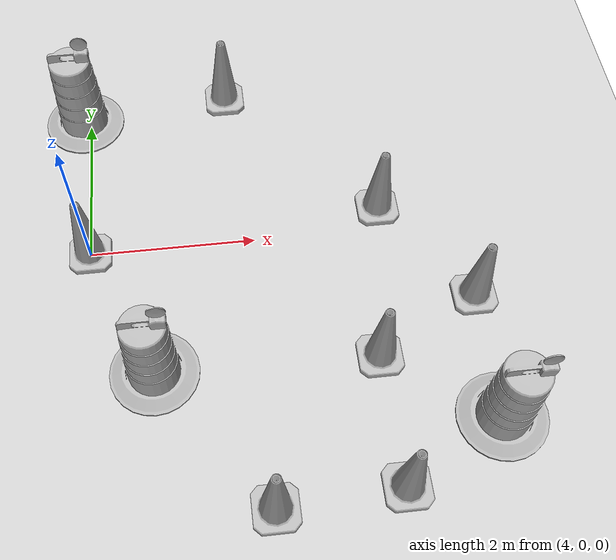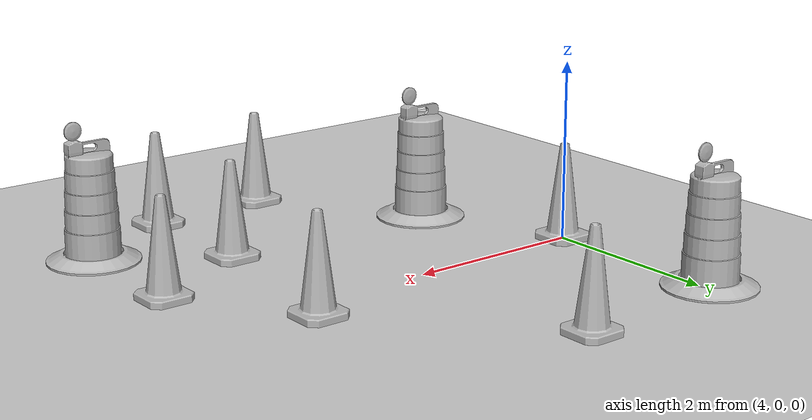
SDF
<sdf version="1.7">
 <world name="default">
  <light name="sun" type="directional">
   <pose>0 0 10 0 -0 0</pose>
   <diffuse>0.8 0.8 0.8 1</diffuse>
   <specular>0.2 0.2 0.2 1</specular>
   <attenuation>
    <range>1000</range>
    <constant>0.9</constant>
    <linear>0.01</linear>
    <quadratic>0.001</quadratic>
   </attenuation>
   <direction>-0.5 0.1 -0.9</direction>
   <spot><inner_angle>0</inner_angle><outer_angle>0</outer_angle><falloff>0</falloff></spot>
  </light>
  <model name="ground_plane">
   <static>1</static>
   <link name="link">
    <collision name="collision">
     <geometry><plane><normal>0 0 1</normal><size>100 100</size></plane></geometry>
     <surface>
      <contact><collide_bitmask>65535</collide_bitmask></contact>
      <friction><ode><mu>100</mu><mu2>50</mu2></ode></friction>
     </surface>
    </collision>
    <visual name="visual">
     <cast_shadows>0</cast_shadows>
     <geometry><plane><normal>0 0 1</normal><size>100 100</size></plane></geometry>
     <material>
      <script><uri>file://media/materials/scripts/gazebo.material</uri><name>Gazebo/Grey</name></script>
     </material>
    </visual>
   </link>
  </model>
  <gravity>0 0 -9.8</gravity>
  <magnetic_field>6e-06 2.3e-05 -4.2e-05</magnetic_field>
  <atmosphere type="adiabatic"/>
  <physics type="ode">
   <max_step_size>0.001</max_step_size>
   <real_time_factor>1</real_time_factor>
   <real_time_update_rate>1000</real_time_update_rate>
  </physics>
  <scene><ambient>0.4 0.4 0.4 1</ambient><background>0.7 0.7 0.7 1</background><shadows>1</shadows></scene>
  <spherical_coordinates>
   <surface_model>EARTH_WGS84</surface_model>
   <latitude_deg>0</latitude_deg>
   <longitude_deg>0</longitude_deg>
   <elevation>0</elevation>
   <heading_deg>0</heading_deg>
  </spherical_coordinates>
  <model name="Construction Barrel">
   <link name="link">
    <inertial>
     <pose>0 0 0.4 0 -0 0</pose>
     <mass>500</mass>
     <inertia><ixx>51.2096</ixx><iyy>51.2096</iyy><izz>25</izz><ixy>0</ixy><ixz>0</ixz><iyz>0</iyz></inertia>
    </inertial>
    <collision name="collision">
     <geometry><mesh><uri>model://construction_barrel/meshes/construction_barrel.dae</uri></mesh></geometry>
    </collision>
    <visual name="visual">
     <geometry><mesh><uri>model://construction_barrel/meshes/construction_barrel.dae</uri></mesh></geometry>
    </visual>
   </link>
   <pose>4.71222 -1.62796 0 0 -0 -1.9e-05</pose>
  </model>
  <model name="Construction Barrel_clone">
   <link name="link">
    <inertial>
     <pose>0 0 0.4 0 -0 0</pose>
     <mass>500</mass>
     <inertia><ixx>51.2096</ixx><iyy>51.2096</iyy><izz>25</izz><ixy>0</ixy><ixz>0</ixz><iyz>0</iyz></inertia>
    </inertial>
    <collision name="collision">
     <geometry><mesh><uri>model://construction_barrel/meshes/construction_barrel.dae</uri></mesh></geometry>
    </collision>
    <visual name="visual">
     <geometry><mesh><uri>model://construction_barrel/meshes/construction_barrel.dae</uri></mesh></geometry>
    </visual>
   </link>
   <pose>3.92591 2.0852 0 1e-06 1e-06 -2e-05</pose>
  </model>
  <model name="Construction Cone">
   <link name="link">
    <collision name="collision">
     <geometry>
      <mesh><scale>10 10 10</scale><uri>model://construction_cone/meshes/construction_cone.dae</uri></mesh>
     </geometry>
    </collision>
    <visual name="visual">
     <geometry>
      <mesh><scale>10 10 10</scale><uri>model://construction_cone/meshes/construction_cone.dae</uri></mesh>
     </geometry>
    </visual>
    <inertial>
     <inertia><ixx>1</ixx><ixy>0</ixy><ixz>0</ixz><iyy>1</iyy><iyz>0</iyz><izz>1</izz></inertia>
     <mass>1</mass>
    </inertial>
   </link>
   <pose>7.2562 -1.69678 -0 0 -0 0</pose>
  </model>
  <model name="Construction Cone_clone">
   <link name="link">
    <collision name="collision">
     <geometry>
      <mesh><scale>10 10 10</scale><uri>model://construction_cone/meshes/construction_cone.dae</uri></mesh>
     </geometry>
    </collision>
    <visual name="visual">
     <geometry>
      <mesh><scale>10 10 10</scale><uri>model://construction_cone/meshes/construction_cone.dae</uri></mesh>
     </geometry>
    </visual>
    <inertial>
     <inertia><ixx>1</ixx><ixy>0</ixy><ixz>0</ixz><iyy>1</iyy><iyz>0</iyz><izz>1</izz></inertia>
     <mass>1</mass>
    </inertial>
   </link>
   <pose>5.89785 -3.28364 0 -0 -0 -0</pose>
  </model>
  <model name="Construction Cone_clone_0">
   <link name="link">
    <collision name="collision">
     <geometry>
      <mesh><scale>10 10 10</scale><uri>model://construction_cone/meshes/construction_cone.dae</uri></mesh>
     </geometry>
    </collision>
    <visual name="visual">
     <geometry>
      <mesh><scale>10 10 10</scale><uri>model://construction_cone/meshes/construction_cone.dae</uri></mesh>
     </geometry>
    </visual>
    <inertial>
     <inertia><ixx>1</ixx><ixy>0</ixy><ixz>0</ixz><iyy>1</iyy><iyz>0</iyz><izz>1</izz></inertia>
     <mass>1</mass>
    </inertial>
   </link>
   <pose>7.56517 0.311003 -0 0 -1e-06 0</pose>
  </model>
  <model name="Construction Cone_clone_1">
   <link name="link">
    <collision name="collision">
     <geometry>
      <mesh><scale>10 10 10</scale><uri>model://construction_cone/meshes/construction_cone.dae</uri></mesh>
     </geometry>
    </collision>
    <visual name="visual">
     <geometry>
      <mesh><scale>10 10 10</scale><uri>model://construction_cone/meshes/construction_cone.dae</uri></mesh>
     </geometry>
    </visual>
    <inertial>
     <inertia><ixx>1</ixx><ixy>0</ixy><ixz>0</ixz><iyy>1</iyy><iyz>0</iyz><izz>1</izz></inertia>
     <mass>1</mass>
    </inertial>
   </link>
   <pose>5.80369 2.28099 -0 0 -0 0</pose>
  </model>
  <model name="Construction Cone_clone_2">
   <link name="link">
    <collision name="collision">
     <geometry>
      <mesh><scale>10 10 10</scale><uri>model://construction_cone/meshes/construction_cone.dae</uri></mesh>
     </geometry>
    </collision>
    <visual name="visual">
     <geometry>
      <mesh><scale>10 10 10</scale><uri>model://construction_cone/meshes/construction_cone.dae</uri></mesh>
     </geometry>
    </visual>
    <inertial>
     <inertia><ixx>1</ixx><ixy>0</ixy><ixz>0</ixz><iyy>1</iyy><iyz>0</iyz><izz>1</izz></inertia>
     <mass>1</mass>
    </inertial>
   </link>
   <pose>8.49235 -1.0384 0 -0 -0 -0</pose>
  </model>
  <model name="Construction Cone_clone_3">
   <link name="link">
    <collision name="collision">
     <geometry>
      <mesh><scale>10 10 10</scale><uri>model://construction_cone/meshes/construction_cone.dae</uri></mesh>
     </geometry>
    </collision>
    <visual name="visual">
     <geometry>
      <mesh><scale>10 10 10</scale><uri>model://construction_cone/meshes/construction_cone.dae</uri></mesh>
     </geometry>
    </visual>
    <inertial>
     <inertia><ixx>1</ixx><ixy>0</ixy><ixz>0</ixz><iyy>1</iyy><iyz>0</iyz><izz>1</izz></inertia>
     <mass>1</mass>
    </inertial>
   </link>
   <pose>7.28671 -3.20052 -0 0 -1e-06 0</pose>
  </model>
  <model name="Construction Cone_clone_4">
   <link name="link">
    <collision name="collision">
     <geometry>
      <mesh><scale>10 10 10</scale><uri>model://construction_cone/meshes/construction_cone.dae</uri></mesh>
     </geometry>
    </collision>
    <visual name="visual">
     <geometry>
      <mesh><scale>10 10 10</scale><uri>model://construction_cone/meshes/construction_cone.dae</uri></mesh>
     </geometry>
    </visual>
    <inertial>
     <inertia><ixx>1</ixx><ixy>0</ixy><ixz>0</ixz><iyy>1</iyy><iyz>0</iyz><izz>1</izz></inertia>
     <mass>1</mass>
    </inertial>
   </link>
   <pose>4 0 -0 0 -0 0</pose>
  </model>
  <model name="Construction Barrel_clone_0">
   <link name="link">
    <inertial>
     <pose>0 0 0.4 0 -0 0</pose>
     <mass>500</mass>
     <inertia><ixx>51.2096</ixx><iyy>51.2096</iyy><izz>25</izz><ixy>0</ixy><ixz>0</ixz><iyz>0</iyz></inertia>
    </inertial>
    <collision name="collision">
     <geometry><mesh><uri>model://construction_barrel/meshes/construction_barrel.dae</uri></mesh></geometry>
    </collision>
    <visual name="visual">
     <geometry><mesh><uri>model://construction_barrel/meshes/construction_barrel.dae</uri></mesh></geometry>
    </visual>
   </link>
   <pose>8.46383 -2.54259 -2e-06 4e-06 7e-06 -1.9e-05</pose>
  </model>
 </world>
</sdf>
